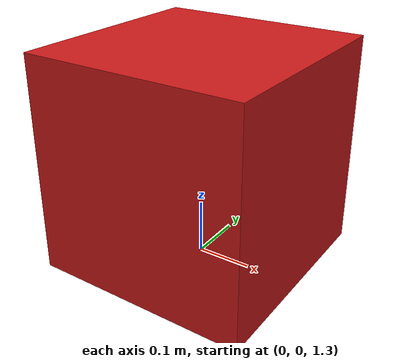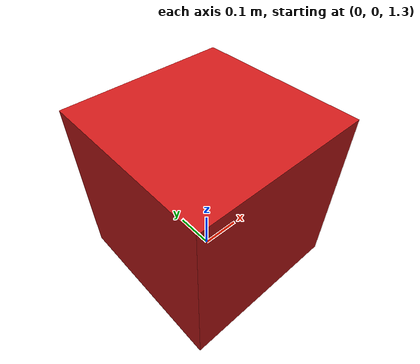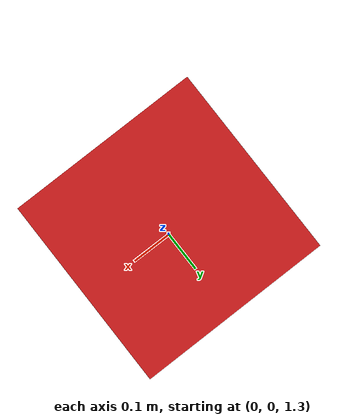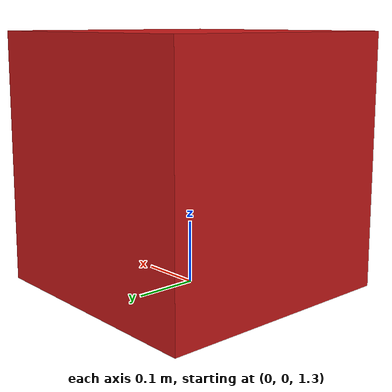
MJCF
<mujoco model="falling_box">
  <compiler angle="degree" coordinate="local"/>
  <option timestep="0.002" gravity="0 0 -9.81" integrator="implicitfast"/>

  <visual>
    <headlight ambient="0.3 0.3 0.3"
               diffuse="0.7 0.7 0.7"
               specular="0.1 0.1 0.1"/>
    <rgba haze="0.15 0.25 0.35 1"/>
    <global azimuth="120" elevation="-20"/>
  </visual>

  <asset>
    <texture name="skybox" type="skybox" builtin="gradient"
             rgb1="0.3 0.5 0.7" rgb2="0 0 0" width="512" height="3072"/>
    <texture name="floor_texture" type="2d" builtin="checker"
             rgb1="0.20 0.30 0.40" rgb2="0.10 0.20 0.30"
             width="512" height="512"/>
    <material name="floor_material" texture="floor_texture"
              texrepeat="8 8" reflectance="0.2"/>
  </asset>

  <worldbody>
    <light name="main_light" pos="0 0 4" dir="0 0 -1" directional="true"/>

    <geom name="floor" type="plane" size="5 5 0.1"
          material="floor_material" friction="1 0.005 0.0001"/>

    <body name="box" pos="0 0 1.5">
      <freejoint name="box_freejoint"/>
      <geom name="box_geom" type="box" size="0.2 0.2 0.2"
            mass="1" rgba="0.8 0.1 0.1 1"/>
    </body>
  </worldbody>
</mujoco>
